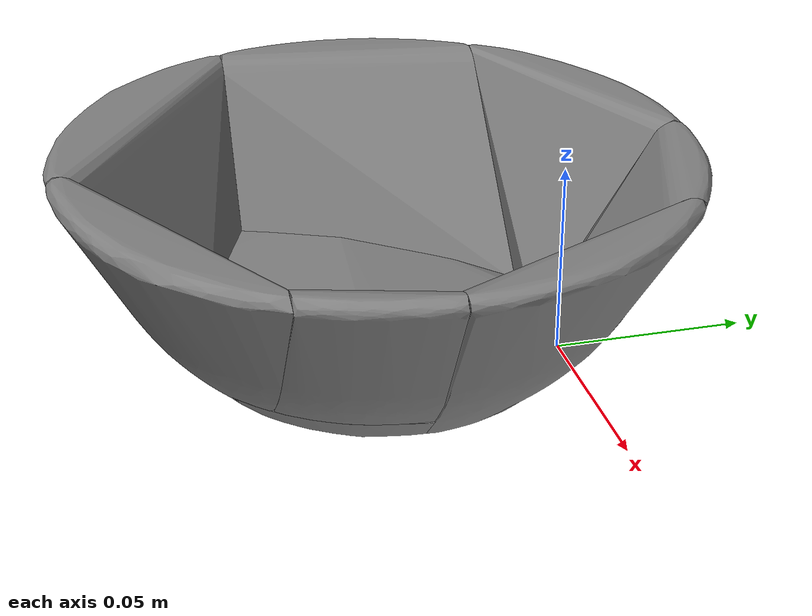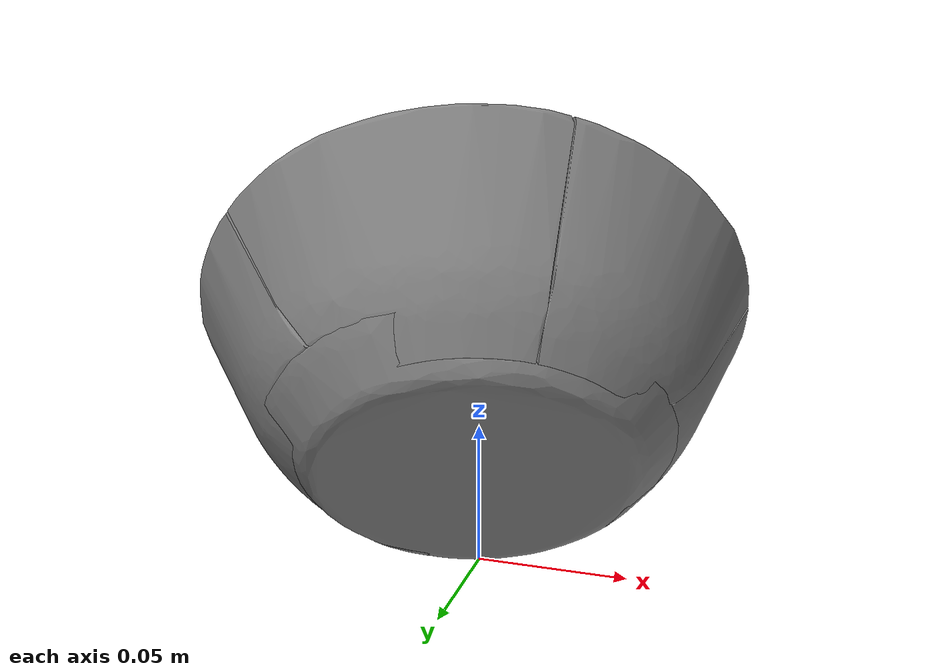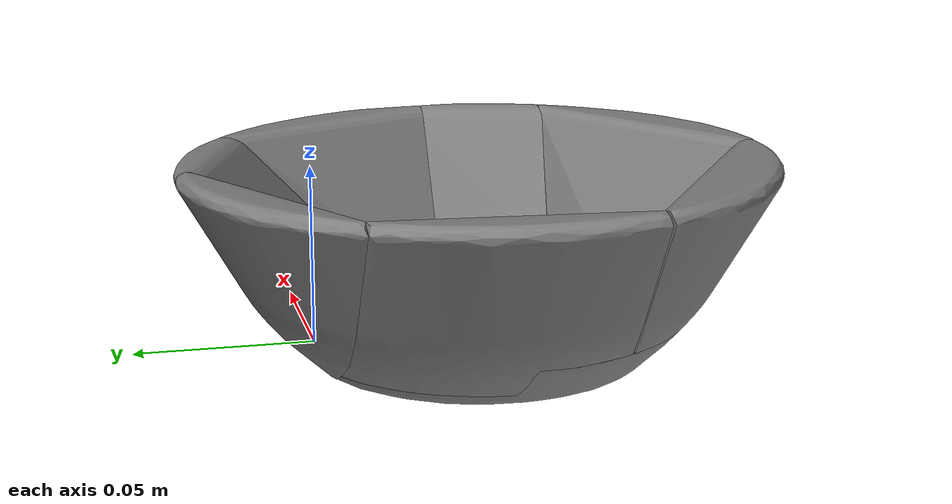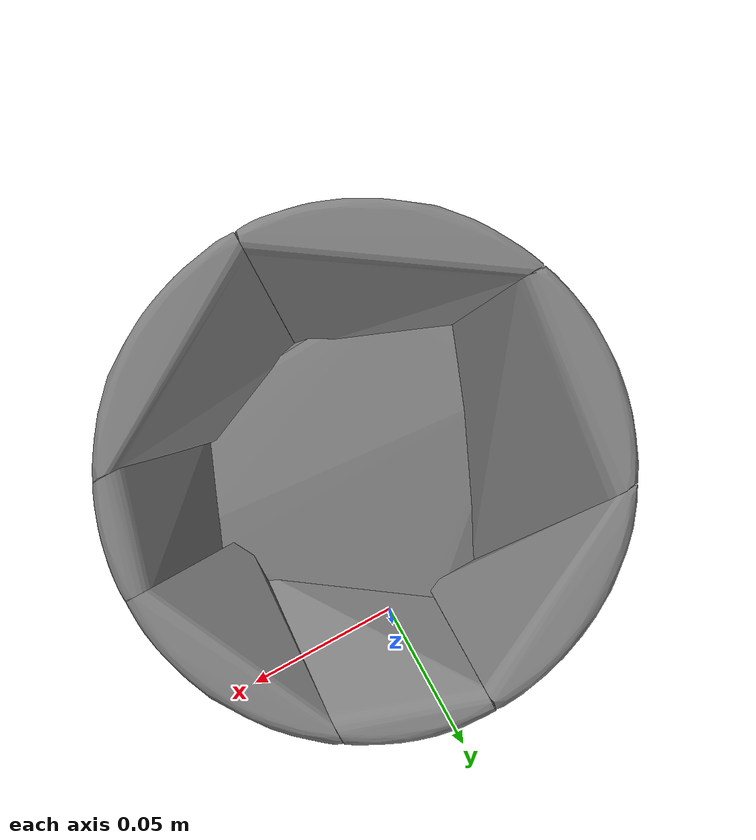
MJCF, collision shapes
<mujoco model="ycb_024_bowl">
  <compiler meshdir="meshes" texturedir="meshes" angle="radian"/>
  <default>
    <default class="visual"><geom contype="0" conaffinity="0" group="2" density="0"/></default>
    <default class="collision"><geom group="3"/></default>
  </default>
  <asset>
    <texture name="ycb_024_bowl_tex" type="2d" file="ycb_024_bowl_texture.png"/>
    <material name="ycb_024_bowl_mat" texture="ycb_024_bowl_tex" specular="0.2" shininess="0.3"/>
    <mesh name="ycb_024_bowl_visual" file="ycb_024_bowl_visual.obj"/>
    <mesh name="ycb_024_bowl_hull0" file="ycb_024_bowl_hull0.obj"/>
    <mesh name="ycb_024_bowl_hull1" file="ycb_024_bowl_hull1.obj"/>
    <mesh name="ycb_024_bowl_hull2" file="ycb_024_bowl_hull2.obj"/>
    <mesh name="ycb_024_bowl_hull3" file="ycb_024_bowl_hull3.obj"/>
    <mesh name="ycb_024_bowl_hull4" file="ycb_024_bowl_hull4.obj"/>
    <mesh name="ycb_024_bowl_hull5" file="ycb_024_bowl_hull5.obj"/>
    <mesh name="ycb_024_bowl_hull6" file="ycb_024_bowl_hull6.obj"/>
    <mesh name="ycb_024_bowl_hull7" file="ycb_024_bowl_hull7.obj"/>
  </asset>
  <worldbody>
    <body name="object" pos="0 0 0">
      <freejoint name="object_free"/>
      <geom type="mesh" mesh="ycb_024_bowl_visual" material="ycb_024_bowl_mat" class="visual"/>
      <geom type="mesh" mesh="ycb_024_bowl_hull0" class="collision"/>
      <geom type="mesh" mesh="ycb_024_bowl_hull1" class="collision"/>
      <geom type="mesh" mesh="ycb_024_bowl_hull2" class="collision"/>
      <geom type="mesh" mesh="ycb_024_bowl_hull3" class="collision"/>
      <geom type="mesh" mesh="ycb_024_bowl_hull4" class="collision"/>
      <geom type="mesh" mesh="ycb_024_bowl_hull5" class="collision"/>
      <geom type="mesh" mesh="ycb_024_bowl_hull6" class="collision"/>
      <geom type="mesh" mesh="ycb_024_bowl_hull7" class="collision"/>
    </body>
  </worldbody>
</mujoco>
